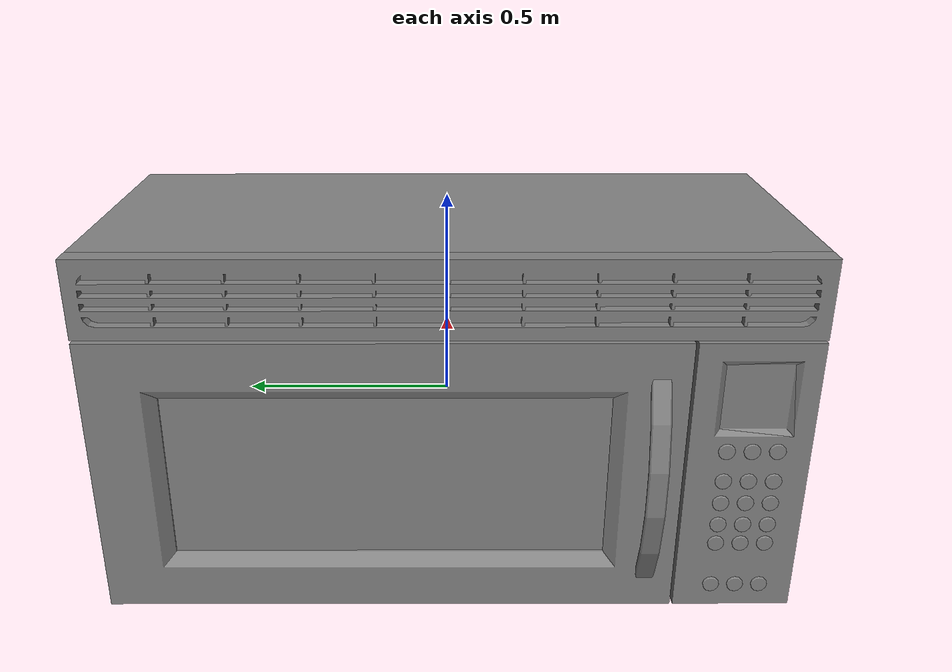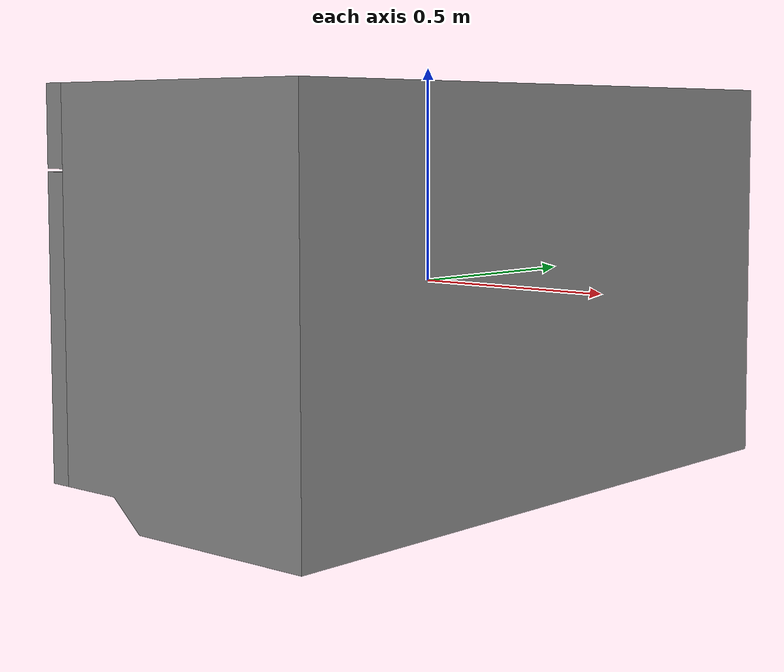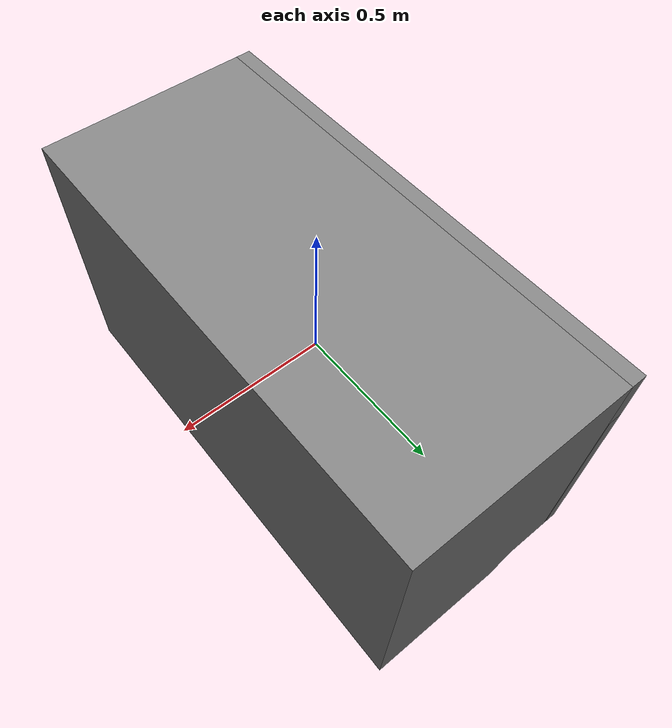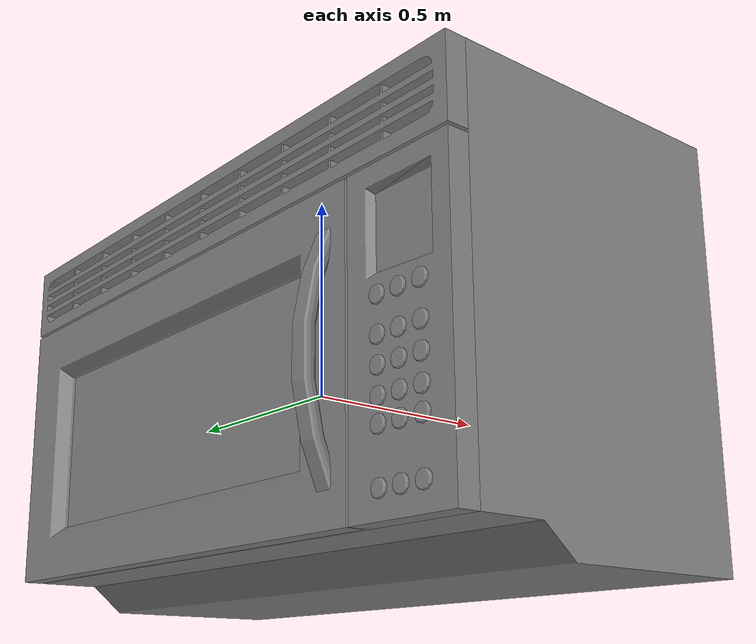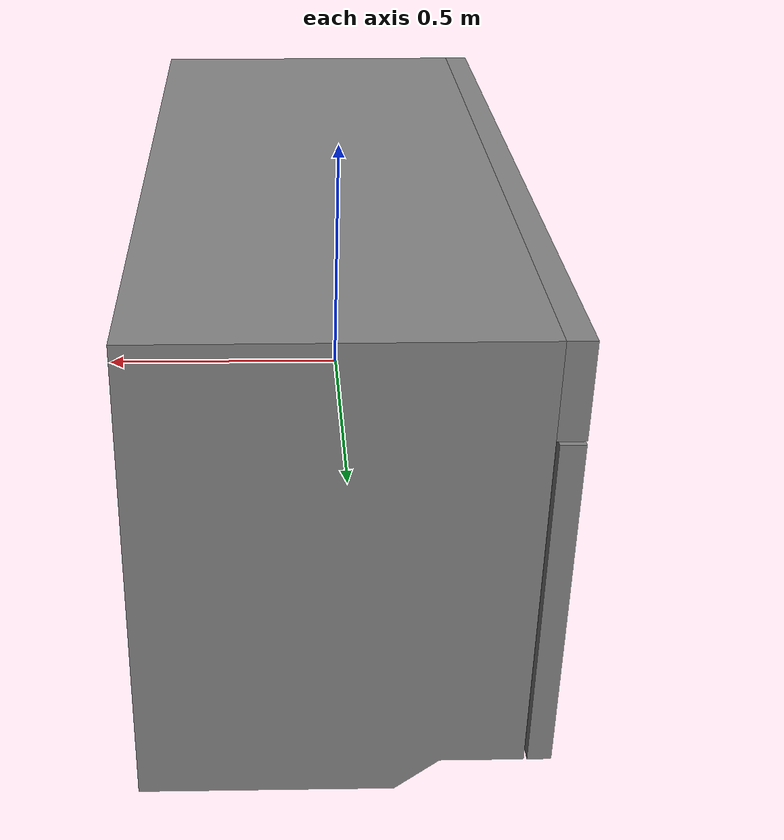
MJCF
<mujoco model="partnet_87bae84777fe8b702bac1bcdfc2402d2">
    <compiler angle="radian" />
    <size njmax="500" nconmax="100" />
    <asset>
        <mesh name="original-4" file="original-4.stl" />
        <mesh name="original-2" file="original-2.stl" />
        <mesh name="original-3" file="original-3.stl" />
        <mesh name="original-12" file="original-12.stl" />
        <mesh name="original-13" file="original-13.stl" />
        <mesh name="original-15" file="original-15.stl" />
        <mesh name="original-14" file="original-14.stl" />
        <mesh name="original-16" file="original-16.stl" />
        <mesh name="original-26" file="original-26.stl" />
        <mesh name="original-17" file="original-17.stl" />
        <mesh name="original-19" file="original-19.stl" />
        <mesh name="original-20" file="original-20.stl" />
        <mesh name="original-23" file="original-23.stl" />
        <mesh name="original-27" file="original-27.stl" />
        <mesh name="original-21" file="original-21.stl" />
        <mesh name="original-22" file="original-22.stl" />
        <mesh name="original-18" file="original-18.stl" />
        <mesh name="original-25" file="original-25.stl" />
        <mesh name="original-11" file="original-11.stl" />
        <mesh name="original-10" file="original-10.stl" />
        <mesh name="original-24" file="original-24.stl" />
        <mesh name="new-0" file="new-0.stl" />
        <mesh name="new-3" file="new-3.stl" />
        <mesh name="original-6" file="original-6.stl" />
        <mesh name="new-1" file="new-1.stl" />
        <mesh name="new-2" file="new-2.stl" />
    </asset>
    <worldbody>
    <body>
        <body name="object">
        <geom quat="0.5 0.5 -0.5 -0.5" type="mesh" group="0" mesh="new-0" conaffinity="0" contype="0" />
        <geom quat="0.5 0.5 -0.5 -0.5" type="mesh" group="0" mesh="new-3" conaffinity="0" contype="0"/>
        <geom quat="0.5 0.5 -0.5 -0.5" type="mesh" group="0" mesh="original-6" conaffinity="0" contype="0"/>
        <geom quat="0.5 0.5 -0.5 -0.5" type="mesh" group="0" mesh="new-1" conaffinity="0" contype="0"/>
        <geom quat="0.5 0.5 -0.5 -0.5" type="mesh" group="0" mesh="new-2" conaffinity="0" contype="0"/>
        <body name="link_0" pos="-0.36599 0.804098 0.457136" quat="0.5 0.5 -0.5 -0.5">
            <inertial pos="0.678139 -0.528226 -0.0237413" quat="0.000147775 0.705485 -0.000129004 0.708725" mass="42.822" diaginertia="7.96437 6.50365 1.48015" />
            <joint name="joint_0" pos="0 0 0" axis="0 -1 0" limited="true" range="0 1.5708" />
            <geom pos="0.804098 -0.457136 -0.36599" type="mesh" group="0" mesh="original-4" name="panel" />
            <geom pos="0.804098 -0.457136 -0.36599" type="mesh" group="0" mesh="original-2" />
            <geom pos="0.804098 -0.457136 -0.36599" type="mesh" group="0" mesh="original-3" />
        </body>
        <body name="link_1" pos="-0.367247 -0.79178 -0.142152" quat="0.5 0.5 -0.5 -0.5">
            <inertial pos="-0.0498873 -0.207103 0.00312529" quat="0 0.707107 0 0.707107" mass="0.00643555" diaginertia="1.09861e-06 5.70476e-07 5.70476e-07" />
            <joint name="joint_1" pos="0 0 0" axis="0 0 -1" type="slide" limited="true" range="0 0.025" />
            <geom pos="-0.79178 0.142152 -0.367247" type="mesh" group="0" mesh="original-12" />
        </body>
        <body name="link_2" pos="-0.367247 -0.79178 -0.142152" quat="0.5 0.5 -0.5 -0.5">
            <inertial pos="-0.107131 -0.207103 0.00312529" quat="0 0.707107 0 0.707107" mass="0.00643557" diaginertia="1.09861e-06 5.7048e-07 5.70478e-07" />
            <joint name="joint_2" pos="0 0 0" axis="0 0 -1" type="slide" limited="true" range="0 0.025" />
            <geom pos="-0.79178 0.142152 -0.367247" type="mesh" group="0" mesh="original-13" />
        </body>
        <body name="link_3" pos="-0.367247 -0.79178 -0.142152" quat="0.5 0.5 -0.5 -0.5">
            <inertial pos="-0.164376 -0.207103 0.00312529" quat="0.5 0.5 -0.5 0.5" mass="0.00643557" diaginertia="1.09861e-06 5.7049e-07 5.70468e-07" />
            <joint name="joint_3" pos="0 0 0" axis="0 0 -1" type="slide" limited="true" range="0 0.025" />
            <geom pos="-0.79178 0.142152 -0.367247" type="mesh" group="0" mesh="original-15" />
        </body>
        <body name="link_4" pos="-0.367247 -0.79178 -0.142152" quat="0.5 0.5 -0.5 -0.5">
            <inertial pos="-0.164376 -0.0926147 0.0031253" quat="0.5 0.5 -0.5 0.5" mass="0.00643548" diaginertia="1.09858e-06 5.70467e-07 5.7046e-07" />
            <joint name="joint_4" pos="0 0 0" axis="0 0 -1" type="slide" limited="true" range="0 0.025" />
            <geom pos="-0.79178 0.142152 -0.367247" type="mesh" group="0" mesh="original-14" />
        </body>
        <body name="link_5" pos="-0.367247 -0.79178 -0.142152" quat="0.5 0.5 -0.5 -0.5">
            <inertial pos="-0.107131 -0.0926147 0.0031253" quat="0 0.707107 0 0.707107" mass="0.00643548" diaginertia="1.09858e-06 5.70472e-07 5.70455e-07" />
            <joint name="joint_5" pos="0 0 0" axis="0 0 -1" type="slide" limited="true" range="0 0.025" />
            <geom pos="-0.79178 0.142152 -0.367247" type="mesh" group="0" mesh="original-16" />
        </body>
        <body name="link_6" pos="-0.367247 -0.79178 -0.142152" quat="0.5 0.5 -0.5 -0.5">
            <inertial pos="-0.0498873 -0.0926147 0.00312529" quat="0 0.707107 0 0.707107" mass="0.00643546" diaginertia="1.09858e-06 5.70468e-07 5.70454e-07" />
            <joint name="joint_6" pos="0 0 0" axis="0 0 -1" type="slide" limited="true" range="0 0.025" />
            <geom pos="-0.79178 0.142152 -0.367247" type="mesh" group="0" mesh="original-26" />
        </body>
        <body name="link_7" pos="-0.367247 -0.79178 -0.142152" quat="0.5 0.5 -0.5 -0.5">
            <inertial pos="-0.0498873 -0.041731 0.00312529" quat="0 0.707107 0 0.707107" mass="0.00643555" diaginertia="1.09861e-06 5.70476e-07 5.70476e-07" />
            <joint name="joint_7" pos="0 0 0" axis="0 0 -1" type="slide" limited="true" range="0 0.025" />
            <geom pos="-0.79178 0.142152 -0.367247" type="mesh" group="0" mesh="original-17" />
        </body>
        <body name="link_8" pos="-0.367247 -0.79178 -0.142152" quat="0.5 0.5 -0.5 -0.5">
            <inertial pos="-0.107131 -0.041731 0.00312529" quat="0 0.707107 0 0.707107" mass="0.00643557" diaginertia="1.09861e-06 5.7048e-07 5.70477e-07" />
            <joint name="joint_8" pos="0 0 0" axis="0 0 -1" type="slide" limited="true" range="0 0.025" />
            <geom pos="-0.79178 0.142152 -0.367247" type="mesh" group="0" mesh="original-19" />
        </body>
        <body name="link_9" pos="-0.367247 -0.79178 -0.142152" quat="0.5 0.5 -0.5 -0.5">
            <inertial pos="-0.164376 -0.041731 0.00312529" quat="0.5 0.5 -0.5 0.5" mass="0.00643557" diaginertia="1.09861e-06 5.7049e-07 5.70468e-07" />
            <joint name="joint_9" pos="0 0 0" axis="0 0 -1" type="slide" limited="true" range="0 0.025" />
            <geom pos="-0.79178 0.142152 -0.367247" type="mesh" group="0" mesh="original-20" />
        </body>
        <body name="link_10" pos="-0.367247 -0.79178 -0.142152" quat="0.5 0.5 -0.5 -0.5">
            <inertial pos="-0.164376 0.015513 0.0031253" quat="0.5 0.5 -0.5 0.5" mass="0.00643558" diaginertia="1.09862e-06 5.70493e-07 5.70469e-07" />
            <joint name="joint_10" pos="0 0 0" axis="0 0 -1" type="slide" limited="true" range="0 0.025" />
            <geom pos="-0.79178 0.142152 -0.367247" type="mesh" group="0" mesh="original-23" />
        </body>
        <body name="link_11" pos="-0.367247 -0.79178 -0.142152" quat="0.5 0.5 -0.5 -0.5">
            <inertial pos="-0.107131 0.015513 0.0031253" quat="0 0.707107 0 0.707107" mass="0.00643558" diaginertia="1.09862e-06 5.70481e-07 5.70481e-07" />
            <joint name="joint_11" pos="0 0 0" axis="0 0 -1" type="slide" limited="true" range="0 0.025" />
            <geom pos="-0.79178 0.142152 -0.367247" type="mesh" group="0" mesh="original-27" />
        </body>
        <body name="link_12" pos="-0.367247 -0.79178 -0.142152" quat="0.5 0.5 -0.5 -0.5">
            <inertial pos="-0.0498873 0.015513 0.00312529" quat="0.5 0.5 -0.5 0.5" mass="0.00643556" diaginertia="1.09861e-06 5.70479e-07 5.70477e-07" />
            <joint name="joint_12" pos="0 0 0" axis="0 0 -1" type="slide" limited="true" range="0 0.025" />
            <geom pos="-0.79178 0.142152 -0.367247" type="mesh" group="0" mesh="original-21" />
        </body>
        <body name="link_13" pos="-0.367247 -0.79178 -0.142152" quat="0.5 0.5 -0.5 -0.5">
            <inertial pos="-0.0498873 0.0727573 0.00312529" quat="0 0.707107 0 0.707107" mass="0.00643547" diaginertia="1.09858e-06 5.70468e-07 5.70454e-07" />
            <joint name="joint_13" pos="0 0 0" axis="0 0 -1" type="slide" limited="true" range="0 0.025" />
            <geom pos="-0.79178 0.142152 -0.367247" type="mesh" group="0" mesh="original-22" />
        </body>
        <body name="link_14" pos="-0.367247 -0.79178 -0.142152" quat="0.5 0.5 -0.5 -0.5">
            <inertial pos="-0.107131 0.0727573 0.0031253" quat="0 0.707107 0 0.707107" mass="0.00643548" diaginertia="1.09858e-06 5.70472e-07 5.70455e-07" />
            <joint name="joint_14" pos="0 0 0" axis="0 0 -1" type="slide" limited="true" range="0 0.025" />
            <geom pos="-0.79178 0.142152 -0.367247" type="mesh" group="0" mesh="original-18" />
        </body>
        <body name="link_15" pos="-0.367247 -0.79178 -0.142152" quat="0.5 0.5 -0.5 -0.5">
            <inertial pos="-0.164376 0.0727573 0.0031253" quat="0.5 0.5 -0.5 0.5" mass="0.00643548" diaginertia="1.09858e-06 5.70467e-07 5.7046e-07" />
            <joint name="joint_15" pos="0 0 0" axis="0 0 -1" type="slide" limited="true" range="0 0.025" />
            <geom pos="-0.79178 0.142152 -0.367247" type="mesh" group="0" mesh="original-25" />
        </body>
        <body name="link_16" pos="-0.367247 -0.79178 -0.142152" quat="0.5 0.5 -0.5 -0.5">
            <inertial pos="-0.0498873 0.149083 0.00312529" quat="0 0.707107 0 0.707107" mass="0.00643556" diaginertia="1.09861e-06 5.70489e-07 5.70467e-07" />
            <joint name="joint_16" pos="0 0 0" axis="0 0 -1" type="slide" limited="true" range="0 0.025" />
            <geom pos="-0.79178 0.142152 -0.367247" type="mesh" group="0" mesh="original-11" />
        </body>
        <body name="link_17" pos="-0.367247 -0.79178 -0.142152" quat="0.5 0.5 -0.5 -0.5">
            <inertial pos="-0.107131 0.149083 0.0031253" quat="0 0.707107 0 0.707107" mass="0.00643558" diaginertia="1.09862e-06 5.70493e-07 5.70469e-07" />
            <joint name="joint_17" pos="0 0 0" axis="0 0 -1" type="slide" limited="true" range="0 0.025" />
            <geom pos="-0.79178 0.142152 -0.367247" type="mesh" group="0" mesh="original-10" />
        </body>
        <body name="link_18" pos="-0.367247 -0.79178 -0.142152" quat="0.5 0.5 -0.5 -0.5">
            <inertial pos="-0.164376 0.149083 0.0031253" quat="0 0.707107 0 0.707107" mass="0.00643558" diaginertia="1.09862e-06 5.70481e-07 5.70481e-07" />
            <joint name="joint_18" pos="0 0 0" axis="0 0 -1" type="slide" limited="true" range="0 0.025" />
            <geom pos="-0.79178 0.142152 -0.367247" type="mesh" group="0" mesh="original-24" />
        </body>
     </body>
        <site name="bottom_site" pos="0 0 -0.3" rgba="0 0 0 0" size="0.005"/>
        <site name="top_site" pos="0 0 0.3" rgba="0 0 0 0" size="0.005"/>
        <site name="horizontal_radius_site" pos="0.3 0 0" rgba="0 0 0 0" size="0.1"/>
    </body>
    </worldbody>
</mujoco>
